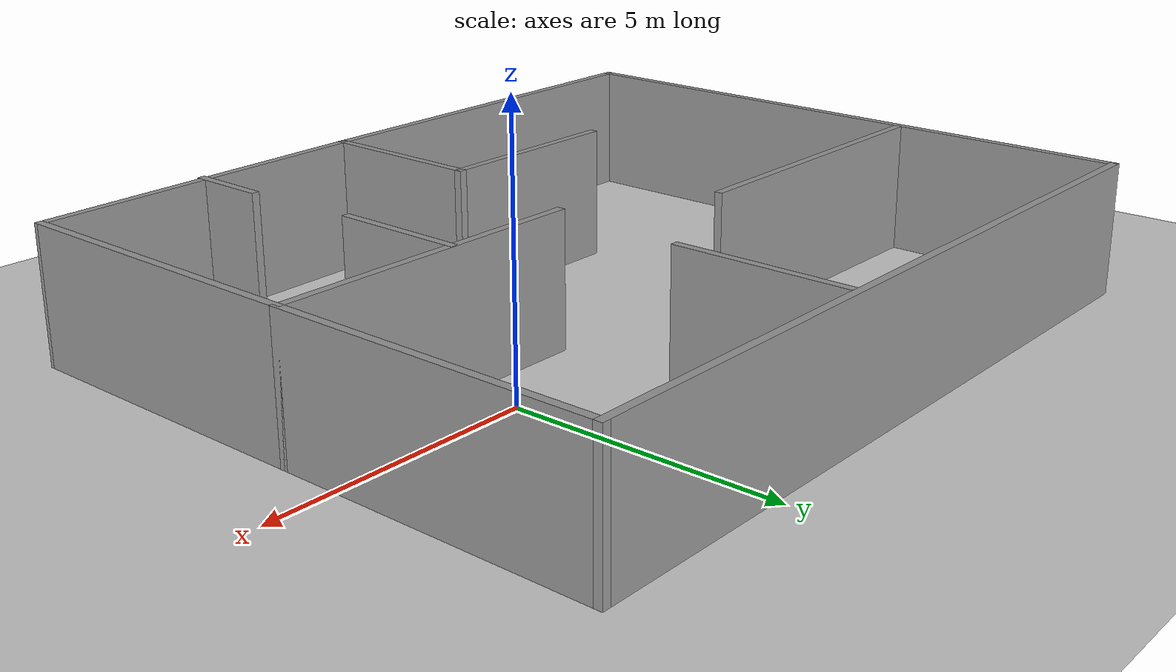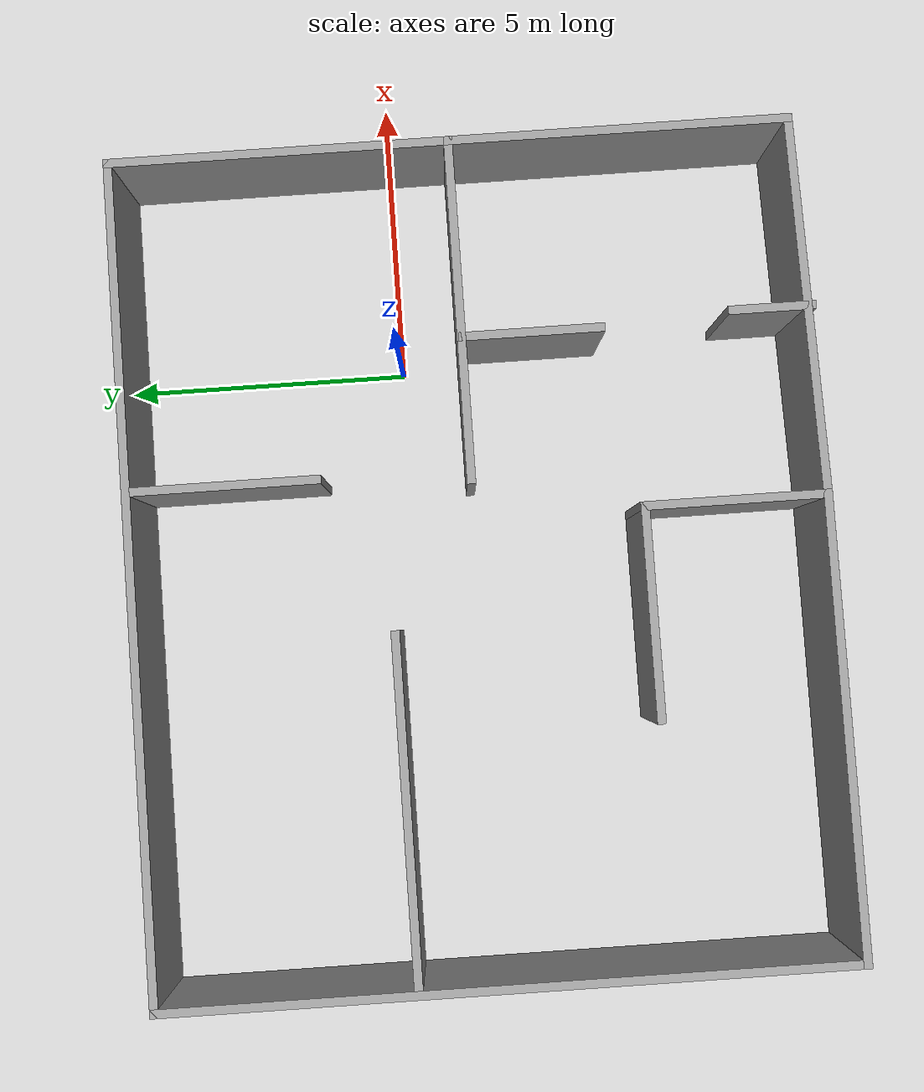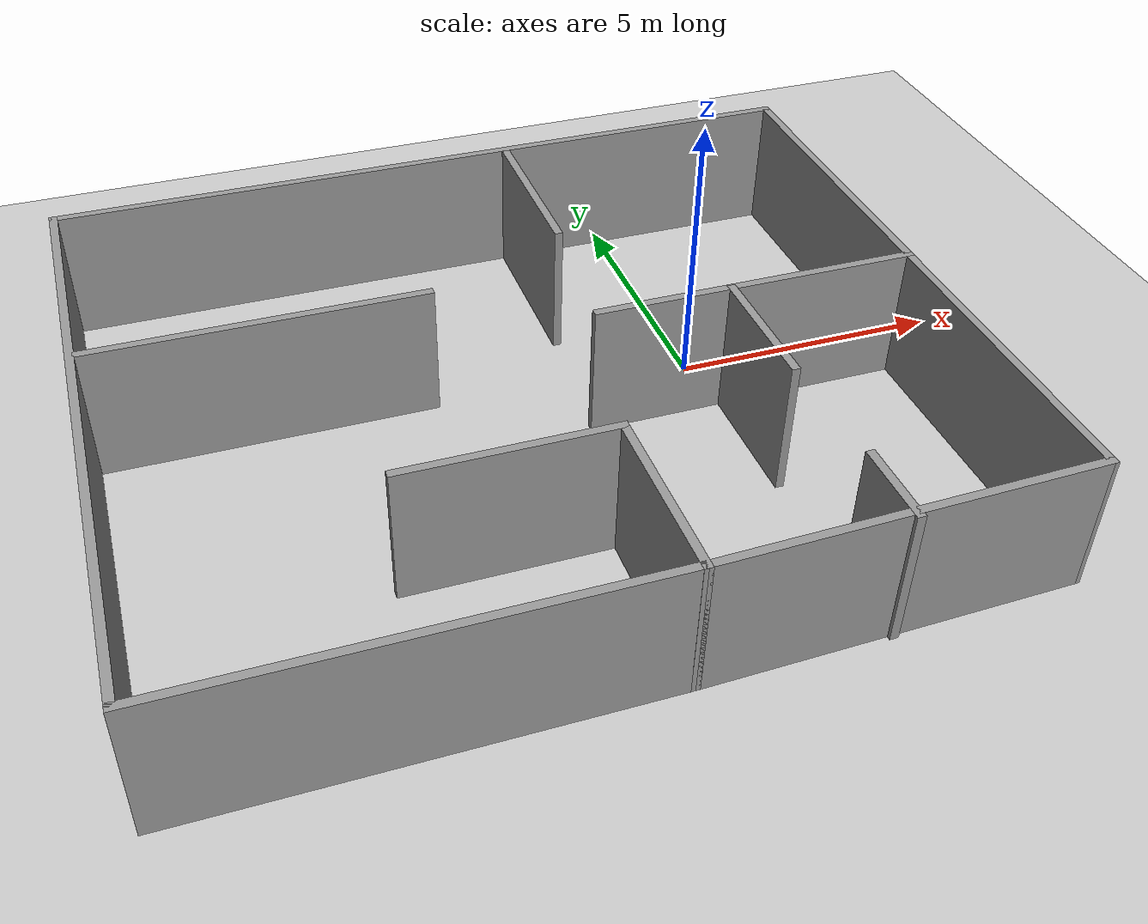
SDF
<sdf version="1.7">
 <world name="default">
  <light name="sun" type="directional">
   <pose>0 0 10 0 -0 0</pose>
   <diffuse>0.8 0.8 0.8 1</diffuse>
   <specular>0.2 0.2 0.2 1</specular>
   <attenuation>
    <range>1000</range>
    <constant>0.9</constant>
    <linear>0.01</linear>
    <quadratic>0.001</quadratic>
   </attenuation>
   <direction>-0.5 0.1 -0.9</direction>
   <spot><inner_angle>0</inner_angle><outer_angle>0</outer_angle><falloff>0</falloff></spot>
  </light>
  <model name="ground_plane">
   <static>1</static>
   <link name="link">
    <collision name="collision">
     <geometry><plane><normal>0 0 1</normal><size>100 100</size></plane></geometry>
     <surface>
      <contact><collide_bitmask>65535</collide_bitmask></contact>
      <friction><ode><mu>100</mu><mu2>50</mu2></ode></friction>
     </surface>
    </collision>
    <visual name="visual">
     <cast_shadows>0</cast_shadows>
     <geometry><plane><normal>0 0 1</normal><size>100 100</size></plane></geometry>
     <material>
      <script><uri>file://media/materials/scripts/gazebo.material</uri><name>Gazebo/Grey</name></script>
     </material>
    </visual>
   </link>
  </model>
  <gravity>0 0 -9.8</gravity>
  <magnetic_field>6e-06 2.3e-05 -4.2e-05</magnetic_field>
  <atmosphere type="adiabatic"/>
  <physics type="ode">
   <max_step_size>0.001</max_step_size>
   <real_time_factor>1</real_time_factor>
   <real_time_update_rate>1000</real_time_update_rate>
  </physics>
  <scene><ambient>0.4 0.4 0.4 1</ambient><background>0.7 0.7 0.7 1</background><shadows>1</shadows></scene>
  <spherical_coordinates>
   <surface_model>EARTH_WGS84</surface_model>
   <latitude_deg>0</latitude_deg>
   <longitude_deg>0</longitude_deg>
   <elevation>0</elevation>
   <heading_deg>0</heading_deg>
  </spherical_coordinates>
  <model name="Untitled">
   <pose>-3.52414 -1.14586 0 0 -0 0</pose>
   <link name="Wall_0">
    <collision name="Wall_0_Collision">
     <geometry><box><size>6 0.15 2.5</size></box></geometry>
     <pose>0 0 1.25 0 -0 0</pose>
    </collision>
    <visual name="Wall_0_Visual">
     <pose>0 0 1.25 0 -0 0</pose>
     <geometry><box><size>6 0.15 2.5</size></box></geometry>
     <material>
      <script><uri>file://media/materials/scripts/gazebo.material</uri><name>Gazebo/Grey</name></script>
      <ambient>1 1 1 1</ambient>
     </material>
     <meta><layer>0</layer></meta>
    </visual>
    <pose>4.24915 0.075855 0 0 -0 0</pose>
   </link>
   <link name="Wall_1">
    <collision name="Wall_1_Collision">
     <geometry><box><size>6 0.15 2.5</size></box></geometry>
     <pose>0 0 1.25 0 -0 0</pose>
    </collision>
    <visual name="Wall_1_Visual">
     <pose>0 0 1.25 0 -0 0</pose>
     <geometry><box><size>6 0.15 2.5</size></box></geometry>
     <material>
      <script><uri>file://media/materials/scripts/gazebo.material</uri><name>Gazebo/Grey</name></script>
      <ambient>1 1 1 1</ambient>
     </material>
     <meta><layer>0</layer></meta>
    </visual>
    <pose>7.17415 3.00086 0 0 -0 1.5708</pose>
   </link>
   <link name="Wall_10">
    <collision name="Wall_10_Collision">
     <geometry><box><size>6 0.15 2.5</size></box></geometry>
     <pose>0 0 1.25 0 -0 0</pose>
    </collision>
    <visual name="Wall_10_Visual">
     <pose>0 0 1.25 0 -0 0</pose>
     <geometry><box><size>6 0.15 2.5</size></box></geometry>
     <material>
      <script><uri>file://media/materials/scripts/gazebo.material</uri><name>Gazebo/Grey</name></script>
      <ambient>1 1 1 1</ambient>
     </material>
     <meta><layer>0</layer></meta>
    </visual>
    <pose>-4.13207 1.53081 0 0 -0 0</pose>
   </link>
   <link name="Wall_12">
    <collision name="Wall_12_Collision">
     <geometry><box><size>6 0.15 2.5</size></box></geometry>
     <pose>0 0 1.25 0 -0 0</pose>
    </collision>
    <visual name="Wall_12_Visual">
     <pose>0 0 1.25 0 -0 0</pose>
     <geometry><box><size>6 0.15 2.5</size></box></geometry>
     <material>
      <script><uri>file://media/materials/scripts/gazebo.material</uri><name>Gazebo/Grey</name></script>
      <ambient>1 1 1 1</ambient>
     </material>
     <meta><layer>0</layer></meta>
    </visual>
    <pose>7.17415 -2.84915 0 0 -0 -1.5708</pose>
   </link>
   <link name="Wall_13">
    <collision name="Wall_13_Collision">
     <geometry><box><size>6.65173 0.15 2.5</size></box></geometry>
     <pose>0 0 1.25 0 -0 0</pose>
    </collision>
    <visual name="Wall_13_Visual">
     <pose>0 0 1.25 0 -0 0</pose>
     <geometry><box><size>6.65173 0.15 2.5</size></box></geometry>
     <material>
      <script><uri>file://media/materials/scripts/gazebo.material</uri><name>Gazebo/Grey</name></script>
      <ambient>1 1 1 1</ambient>
     </material>
     <meta><layer>0</layer></meta>
    </visual>
    <pose>3.92415 -5.84915 0 0 -0 -3.11852</pose>
   </link>
   <link name="Wall_15">
    <collision name="Wall_15_Collision">
     <geometry><box><size>2.5 0.15 2.5</size></box></geometry>
     <pose>0 0 1.25 0 -0 0</pose>
    </collision>
    <visual name="Wall_15_Visual">
     <pose>0 0 1.25 0 -0 0</pose>
     <geometry><box><size>2.5 0.15 2.5</size></box></geometry>
     <material>
      <script><uri>file://media/materials/scripts/gazebo.material</uri><name>Gazebo/Grey</name></script>
      <ambient>1 1 1 1</ambient>
     </material>
     <meta><layer>0</layer></meta>
    </visual>
    <pose>3.76806 -1.12455 0 0 -0 -1.5708</pose>
   </link>
   <link name="Wall_17">
    <collision name="Wall_17_Collision">
     <geometry><box><size>1.5 0.15 2.5</size></box></geometry>
     <pose>0 0 1.25 0 -0 0</pose>
    </collision>
    <visual name="Wall_17_Visual">
     <pose>0 0 1.25 0 -0 0</pose>
     <geometry><box><size>1.5 0.15 2.5</size></box></geometry>
     <material>
      <script><uri>file://media/materials/scripts/gazebo.material</uri><name>Gazebo/Grey</name></script>
      <ambient>1 1 1 1</ambient>
     </material>
     <meta><layer>0</layer></meta>
    </visual>
    <pose>3.90684 -5.24225 0 0 -0 1.5708</pose>
   </link>
   <link name="Wall_2">
    <collision name="Wall_2_Collision">
     <geometry><box><size>14.5 0.15 2.5</size></box></geometry>
     <pose>0 0 1.25 0 -0 0</pose>
    </collision>
    <visual name="Wall_2_Visual">
     <pose>0 0 1.25 0 -0 0</pose>
     <geometry><box><size>14.5 0.15 2.5</size></box></geometry>
     <material>
      <script><uri>file://media/materials/scripts/gazebo.material</uri><name>Gazebo/Grey</name></script>
      <ambient>1 1 1 1</ambient>
     </material>
     <meta><layer>0</layer></meta>
    </visual>
    <pose>-0.000855 5.92586 0 0 -0 3.14159</pose>
   </link>
   <link name="Wall_3">
    <collision name="Wall_3_Collision">
     <geometry><box><size>12 0.15 2.5</size></box></geometry>
     <pose>0 0 1.25 0 -0 0</pose>
    </collision>
    <visual name="Wall_3_Visual">
     <pose>0 0 1.25 0 -0 0</pose>
     <geometry><box><size>12 0.15 2.5</size></box></geometry>
     <material>
      <script><uri>file://media/materials/scripts/gazebo.material</uri><name>Gazebo/Grey</name></script>
      <ambient>1 1 1 1</ambient>
     </material>
     <meta><layer>0</layer></meta>
    </visual>
    <pose>-7.17586 0.000855 0 0 -0 -1.5708</pose>
   </link>
   <link name="Wall_4">
    <collision name="Wall_4_Collision">
     <geometry><box><size>8 0.15 2.5</size></box></geometry>
     <pose>0 0 1.25 0 -0 0</pose>
    </collision>
    <visual name="Wall_4_Visual">
     <pose>0 0 1.25 0 -0 0</pose>
     <geometry><box><size>8 0.15 2.5</size></box></geometry>
     <material>
      <script><uri>file://media/materials/scripts/gazebo.material</uri><name>Gazebo/Grey</name></script>
      <ambient>1 1 1 1</ambient>
     </material>
     <meta><layer>0</layer></meta>
    </visual>
    <pose>-3.25086 -5.92415 0 0 -0 0</pose>
   </link>
   <link name="Wall_5">
    <collision name="Wall_5_Collision">
     <geometry><box><size>3.25 0.15 2.5</size></box></geometry>
     <pose>0 0 1.25 0 -0 0</pose>
    </collision>
    <visual name="Wall_5_Visual">
     <pose>0 0 1.25 0 -0 0</pose>
     <geometry><box><size>3.25 0.15 2.5</size></box></geometry>
     <material>
      <script><uri>file://media/materials/scripts/gazebo.material</uri><name>Gazebo/Grey</name></script>
      <ambient>1 1 1 1</ambient>
     </material>
     <meta><layer>0</layer></meta>
    </visual>
    <pose>0.674145 -4.37415 0 0 -0 1.5708</pose>
   </link>
   <link name="Wall_6">
    <collision name="Wall_6_Collision">
     <geometry><box><size>3.75 0.15 2.5</size></box></geometry>
     <pose>0 0 1.25 0 -0 0</pose>
    </collision>
    <visual name="Wall_6_Visual">
     <pose>0 0 1.25 0 -0 0</pose>
     <geometry><box><size>3.75 0.15 2.5</size></box></geometry>
     <material>
      <script><uri>file://media/materials/scripts/gazebo.material</uri><name>Gazebo/Grey</name></script>
      <ambient>1 1 1 1</ambient>
     </material>
     <meta><layer>0</layer></meta>
    </visual>
    <pose>-1.12586 -2.82415 0 0 -0 3.14159</pose>
   </link>
   <link name="Wall_8">
    <collision name="Wall_8_Collision">
     <geometry><box><size>3.25 0.15 2.5</size></box></geometry>
     <pose>0 0 1.25 0 -0 0</pose>
    </collision>
    <visual name="Wall_8_Visual">
     <pose>0 0 1.25 0 -0 0</pose>
     <geometry><box><size>3.25 0.15 2.5</size></box></geometry>
     <material>
      <script><uri>file://media/materials/scripts/gazebo.material</uri><name>Gazebo/Grey</name></script>
      <ambient>1 1 1 1</ambient>
     </material>
     <meta><layer>0</layer></meta>
    </visual>
    <pose>1.50126 4.23684 0 0 -0 -1.5708</pose>
   </link>
   <static>1</static>
  </model>
 </world>
</sdf>
